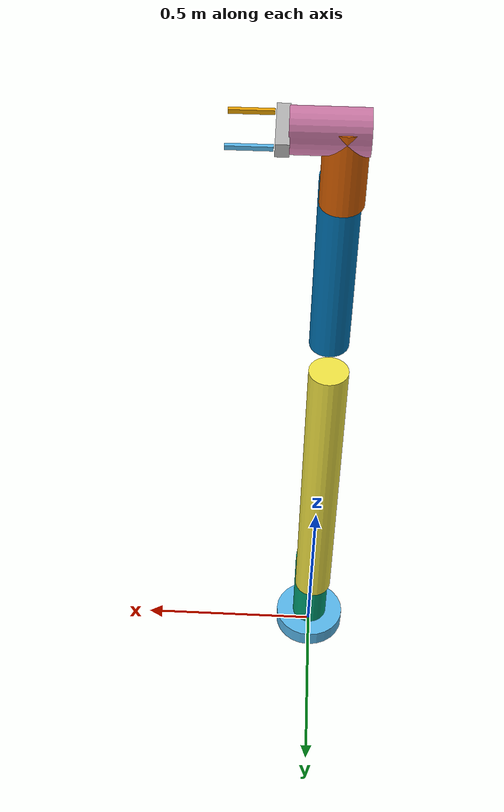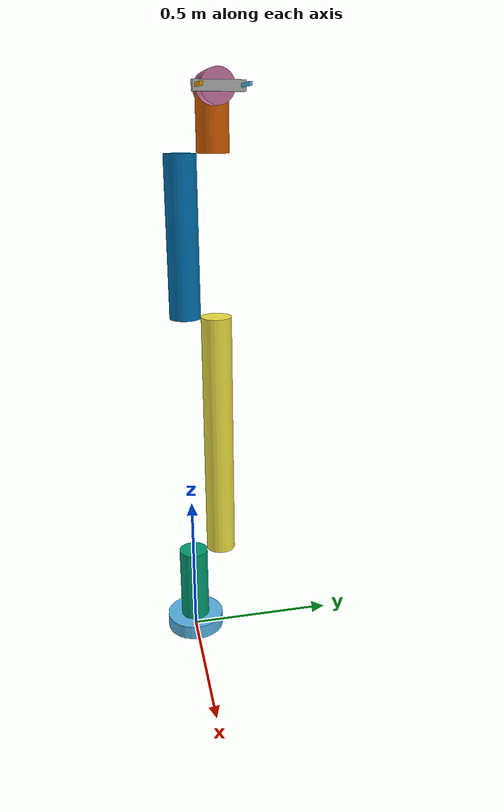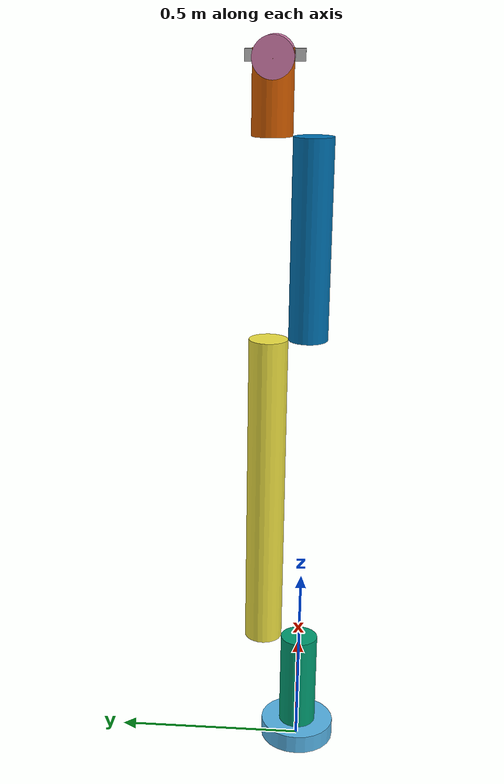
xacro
<?xml version="1.0"?>
<robot name="arm_bot" xmlns:xacro="http://www.ros.org/wiki/xacro">
 <xacro:include filename="$(find arm_bot)/urdf/joint_link.xacro"/>
 <link name="root">

 </link>
<xacro:link_cylinder name="base_link" origin_xyz="0.0 0.0 0.025" rpy="0.0 0.0 0.0" radius="0.1" length="0.05" mass="1" ixx="0.01625" ixy="0" ixz="0"
                            iyy="0.01625" iyz="0" izz="0.005" />
<joint name="root_base" type="fixed">
        <parent link="root"/>
        <child link="base_link"/>
        <origin xyz="0 0 0"/>
    </joint>
<xacro:link_cylinder name="link1" origin_xyz="0.0 0.0 0.132" rpy="0.0 0.0 0.0" radius="0.05" length="0.264" mass="1.5" ixx="0.054147" ixy="0" ixz="0"
                            iyy="0.054147" iyz="0" izz="0.001875"/>

<xacro:joints name="base_link_link1" type="revolute" par="base_link" child="link1" limit_l="-3.1415" limit_u="3.1415" effort="0.5" velocity="1000.0"
                origin="0.0 0.0 0.05" rpy="0.0 0.0 0.0" xyz="0.0 0.0 1.0"/>

<xacro:link_cylinder name="link2" origin_xyz="0.0 0.0 0.425" rpy="0.0 0.0 0.0" radius="0.05" length="0.850" mass="2" ixx="0.4816" ixy="0" ixz="0"
                            iyy="0" iyz="0" izz="0.4816" />

<xacro:joints name="link1_link2" type="revolute" par="link1" child="link2" limit_l="-2.5" limit_u="2.5" effort="0.5" velocity="1000.0"
                origin="0.0 0.1 0.268" rpy="0.0 0.0 0.0" xyz="0.0 1.0 0.0"/>

<xacro:link_cylinder name="link3" origin_xyz="0.0 0.0 0.250" rpy="0.0 0.0 0.0" radius="0.05" length="0.500" mass="2" ixx="0.4816" ixy="0" ixz="0"
                            iyy="0" iyz="0" izz="0.4816"/>

<xacro:joints name="link2_link3" type="revolute" par="link2" child="link3" limit_l="-2.5" limit_u="2.5" effort="0.5" velocity="1000.0"
                origin="0.0 -0.1 0.850" rpy="0.0 0.0 0.0" xyz="0.0 1.0 0.0"/>

<xacro:link_cylinder name="link4" origin_xyz="0.0 0.0 0.100" rpy="0.0 0.0 0.0" radius="0.05" length="0.200" mass="1" ixx="0.00565" ixy="0" ixz="0"
                            iyy="0" iyz="0" izz="0.00565"/>

<xacro:joints name="link3_link4" type="revolute" par="link3" child="link4" limit_l="-2.5" limit_u="2.5" effort="0.5" velocity="1000.0"
                origin="0.0 0.1 0.500" rpy="0.0 0.0 0.0" xyz="0.0 1.0 0.0"/>

<xacro:link_cylinder name="link5" origin_xyz="0.0 0.0 0.03500" rpy="0.0 0.0 0.0" radius="0.05" length="0.17" mass="1" ixx="0.00565" ixy="0" ixz="0"
                            iyy="0" iyz="0" izz="0.00565"/>

<xacro:joints name="link4_link5" type="revolute" par="link4" child="link5" limit_l="-2.5" limit_u="2.5" effort="0.5" velocity="1000.0"
                origin="0.0 0.0 0.18" rpy="0.0 1.57 0.0" xyz="1.0 0.0 0.0"/>

    <xacro:link_box name="tcp" origin_xyz="0.0 0.0 0.0125" rpy="0.0 0.0 0.0" size="0.03 0.15 0.03" mass="1" ixx="0.00195" ixy="0" ixz="0"
                            iyy="0.00195" iyz="0" izz="0.00015"/>

<xacro:joints name="link5_tcp" type="revolute" par="link5" child="tcp" limit_l="-2.5" limit_u="2.5" effort="0.5" velocity="1000.0"
                origin="0.0 0.0 0.12" rpy="0.0 0.0 0.0" xyz="0.0 0.0 1.0"/>

    <xacro:link_box name="rgripper" origin_xyz="0.0 0.0 0.05" rpy="0.0 0.0 0.0" size="0.01 0.01 0.1" mass="0.5" ixx="0.00042" ixy="0" ixz="0"
                            iyy="0.00042" iyz="0" izz="0.0000083"/>

<xacro:joints name="tcp_rgripper" type="prismatic" par="tcp" child="rgripper" limit_l="0.0" limit_u="0.055" effort="0.5" velocity="1000.0"
                origin="0.0 -0.065 0.03" rpy="0.0 0.0 0.0" xyz="0.0 1.0 0.0"/>

    <xacro:link_box name="lgripper" origin_xyz="0.0 0.0 0.05" rpy="0.0 0.0 0.0" size="0.01 0.01 0.1" mass="0.5" ixx="0.00042" ixy="0" ixz="0"
                            iyy="0.00042" iyz="0" izz="0.0000083"/>

 <xacro:joints name="tcp_lgripper" type="prismatic" par="tcp" child="lgripper" limit_l="0.0" limit_u="-0.055" effort="0.5" velocity="1000.0"
                origin="0.0 0.065 0.03" rpy="0.0 0.0 0.0" xyz="0.0 1.0 0.0"/>
</robot>

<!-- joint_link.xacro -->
<robot xmlns:xacro="http://www.ros.org/wiki/xacro" name="arm_bot">
    <xacro:macro name="link_cylinder" params="name origin_xyz rpy radius length mass ixx ixy ixz iyy iyz izz">
        <link name="${name}">
        <inertial>
            <origin xyz="${origin_xyz}" rpy="${rpy}"/>
            <mass value="${mass}"/>
            <inertia ixx="${ixx}" ixy="${ixy}" ixz="${ixz}" iyy="${iyy}" iyz="${iyz}" izz="${izz}"/>
        </inertial>
             <visual>
        <geometry>
            <cylinder radius="${radius}" length="${length}"/>
        </geometry>
        <origin xyz="${origin_xyz}" rpy="${rpy}"/>
    </visual>
    <collision>
               <geometry>
            <cylinder radius="${radius}" length="${length}"/>
        </geometry>
        <origin xyz="${origin_xyz}" rpy="${rpy}"/>
    </collision>
        </link>
    </xacro:macro>
    <xacro:macro name="link_box" params="name origin_xyz rpy size mass ixx ixy ixz iyy iyz izz">

<link name="${name}">
        <inertial>
            <origin xyz="${origin_xyz}" rpy="${rpy}"/>
            <mass value="${mass}"/>
            <inertia ixx="${ixx}" ixy="${ixy}" ixz="${ixz}" iyy="${iyy}" iyz="${iyz}" izz="${izz}"/>
        </inertial>
    <visual>
        <geometry>
            <box size="${size}"/>
        </geometry>
        <origin xyz="${origin_xyz}" rpy="${rpy}"/>
    </visual>
    <collision>
      <geometry>
            <box size="${size}"/>
        </geometry>
        <origin xyz="${origin_xyz}" rpy="${rpy}"/>
    </collision>
</link>
    </xacro:macro>

    <xacro:macro name="joints" params="name type par child limit_l limit_u effort velocity origin rpy xyz">

<joint name="${name}" type="${type}">
    <parent link="${par}"/>
    <child link="${child}"/>
    <axis xyz="${xyz}"/>
    <limit lower="${limit_l}" upper="${limit_u}" effort="${effort}" velocity="${velocity}"/>
    <origin xyz="${origin}" rpy="${rpy}"/>

</joint>

    </xacro:macro>
</robot>
